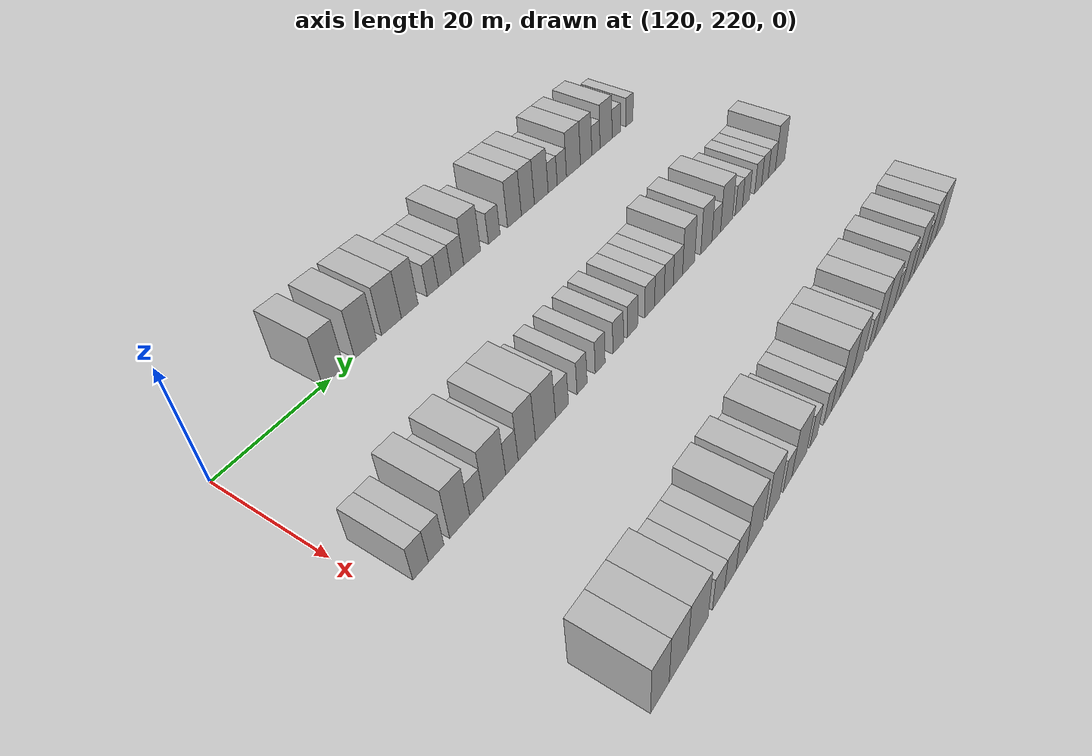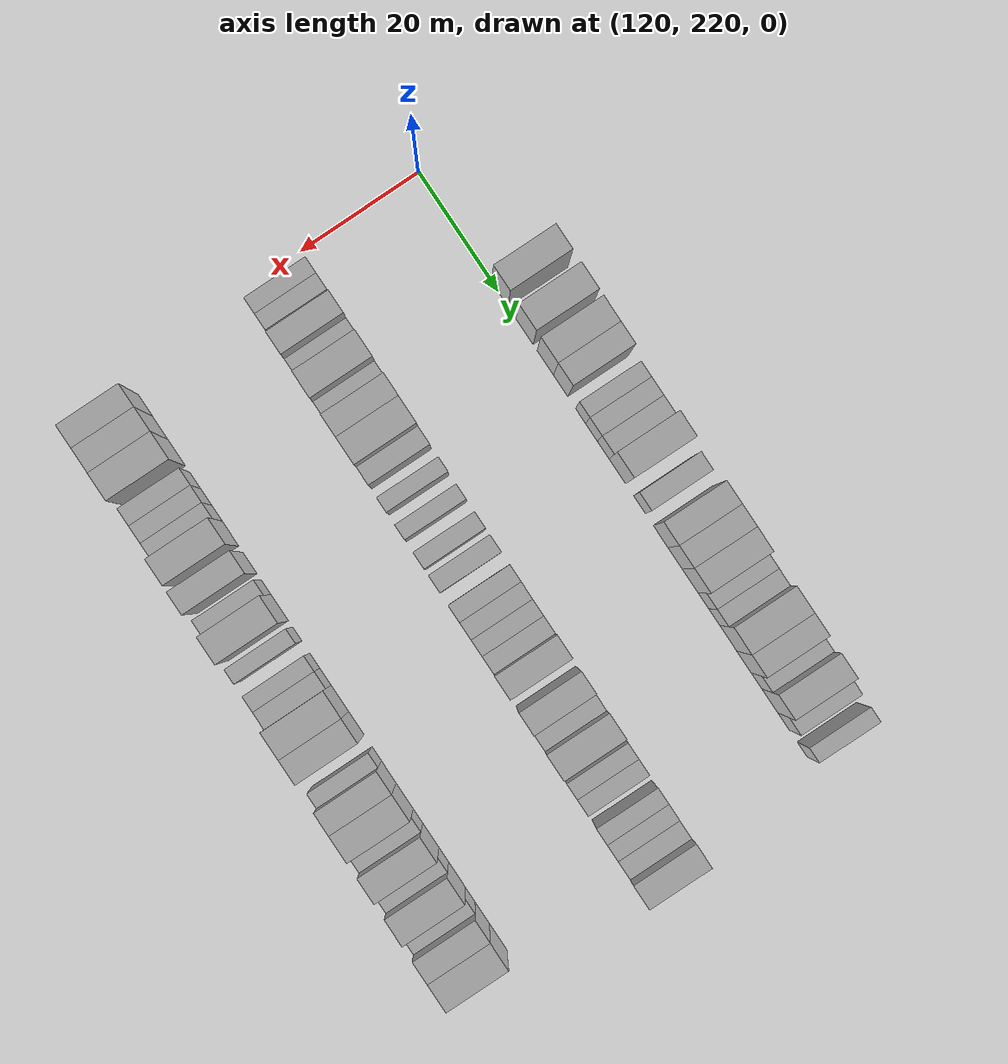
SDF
<sdf version="1.6">
 <world name="default">
  <model name="building_854">
   <static>1</static>
   <pose>115.0000 240.5584 0 0.000000 0.000000 0.000000</pose>
   <link name="link">
    <pose>0 0 4.50 0 0 0</pose>
    <collision name="collision"><geometry><box><size>10.0000 4.0631 9.0000</size></box></geometry></collision>
    <visual name="visual">
     <cast_shadows>0</cast_shadows>
     <geometry><box><size>10.0000 4.0631 9.0000</size></box></geometry>
     <material>
      <script>
       <uri>model://HANNAS_wall/materials/scripts</uri>
       <uri>model://HANNAS_wall/materials/textures</uri>
       <name>vrc/HANNAS_wall</name>
      </script>
     </material>
    </visual>
   </link>
  </model>
  <model name="building_855">
   <static>1</static>
   <pose>115.0000 246.7543 0 0.000000 0.000000 0.000000</pose>
   <link name="link">
    <pose>0 0 4.50 0 0 0</pose>
    <collision name="collision"><geometry><box><size>10.0000 4.3288 9.0000</size></box></geometry></collision>
    <visual name="visual">
     <cast_shadows>0</cast_shadows>
     <geometry><box><size>10.0000 4.3288 9.0000</size></box></geometry>
     <material>
      <script>
       <uri>model://HANNAS_wall/materials/scripts</uri>
       <uri>model://HANNAS_wall/materials/textures</uri>
       <name>vrc/HANNAS_wall</name>
      </script>
     </material>
    </visual>
   </link>
  </model>
  <model name="building_856">
   <static>1</static>
   <pose>115.0000 251.9937 0 0.000000 0.000000 0.000000</pose>
   <link name="link">
    <pose>0 0 4.50 0 0 0</pose>
    <collision name="collision"><geometry><box><size>10.0000 4.1499 9.0000</size></box></geometry></collision>
    <visual name="visual">
     <cast_shadows>0</cast_shadows>
     <geometry><box><size>10.0000 4.1499 9.0000</size></box></geometry>
     <material>
      <script>
       <uri>model://HANNAS_wall/materials/scripts</uri>
       <uri>model://HANNAS_wall/materials/textures</uri>
       <name>vrc/HANNAS_wall</name>
      </script>
     </material>
    </visual>
   </link>
  </model>
  <model name="building_857">
   <static>1</static>
   <pose>115.0000 255.8738 0 0.000000 0.000000 0.000000</pose>
   <link name="link">
    <pose>0 0 4.50 0 0 0</pose>
    <collision name="collision"><geometry><box><size>10.0000 3.6103 9.0000</size></box></geometry></collision>
    <visual name="visual">
     <cast_shadows>0</cast_shadows>
     <geometry><box><size>10.0000 3.6103 9.0000</size></box></geometry>
     <material>
      <script>
       <uri>model://HANNAS_wall/materials/scripts</uri>
       <uri>model://HANNAS_wall/materials/textures</uri>
       <name>vrc/HANNAS_wall</name>
      </script>
     </material>
    </visual>
   </link>
  </model>
  <model name="building_858">
   <static>1</static>
   <pose>115.0000 260.9586 0 0.000000 0.000000 0.000000</pose>
   <link name="link">
    <pose>0 0 3.00 0 0 0</pose>
    <collision name="collision"><geometry><box><size>10.0000 2.5593 6.0000</size></box></geometry></collision>
    <visual name="visual">
     <cast_shadows>0</cast_shadows>
     <geometry><box><size>10.0000 2.5593 6.0000</size></box></geometry>
     <material>
      <script>
       <uri>model://HANNAS_wall/materials/scripts</uri>
       <uri>model://HANNAS_wall/materials/textures</uri>
       <name>vrc/HANNAS_wall</name>
      </script>
     </material>
    </visual>
   </link>
  </model>
  <model name="building_859">
   <static>1</static>
   <pose>115.0000 263.7291 0 0.000000 0.000000 0.000000</pose>
   <link name="link">
    <pose>0 0 3.00 0 0 0</pose>
    <collision name="collision"><geometry><box><size>10.0000 2.9817 6.0000</size></box></geometry></collision>
    <visual name="visual">
     <cast_shadows>0</cast_shadows>
     <geometry><box><size>10.0000 2.9817 6.0000</size></box></geometry>
     <material>
      <script>
       <uri>model://HANNAS_wall/materials/scripts</uri>
       <uri>model://HANNAS_wall/materials/textures</uri>
       <name>vrc/HANNAS_wall</name>
      </script>
     </material>
    </visual>
   </link>
  </model>
  <model name="building_860">
   <static>1</static>
   <pose>115.0000 266.7163 0 0.000000 0.000000 0.000000</pose>
   <link name="link">
    <pose>0 0 3.00 0 0 0</pose>
    <collision name="collision"><geometry><box><size>10.0000 2.9927 6.0000</size></box></geometry></collision>
    <visual name="visual">
     <cast_shadows>0</cast_shadows>
     <geometry><box><size>10.0000 2.9927 6.0000</size></box></geometry>
     <material>
      <script>
       <uri>model://HANNAS_wall/materials/scripts</uri>
       <uri>model://HANNAS_wall/materials/textures</uri>
       <name>vrc/HANNAS_wall</name>
      </script>
     </material>
    </visual>
   </link>
  </model>
  <model name="building_861">
   <static>1</static>
   <pose>115.0000 270.2825 0 0.000000 0.000000 0.000000</pose>
   <link name="link">
    <pose>0 0 4.50 0 0 0</pose>
    <collision name="collision"><geometry><box><size>10.0000 4.1398 9.0000</size></box></geometry></collision>
    <visual name="visual">
     <cast_shadows>0</cast_shadows>
     <geometry><box><size>10.0000 4.1398 9.0000</size></box></geometry>
     <material>
      <script>
       <uri>model://HANNAS_wall/materials/scripts</uri>
       <uri>model://HANNAS_wall/materials/textures</uri>
       <name>vrc/HANNAS_wall</name>
      </script>
     </material>
    </visual>
   </link>
  </model>
  <model name="building_862">
   <static>1</static>
   <pose>115.0000 275.8511 0 0.000000 0.000000 0.000000</pose>
   <link name="link">
    <pose>0 0 3.00 0 0 0</pose>
    <collision name="collision"><geometry><box><size>10.0000 2.9973 6.0000</size></box></geometry></collision>
    <visual name="visual">
     <cast_shadows>0</cast_shadows>
     <geometry><box><size>10.0000 2.9973 6.0000</size></box></geometry>
     <material>
      <script>
       <uri>model://HANNAS_wall/materials/scripts</uri>
       <uri>model://HANNAS_wall/materials/textures</uri>
       <name>vrc/HANNAS_wall</name>
      </script>
     </material>
    </visual>
   </link>
  </model>
  <model name="building_863">
   <static>1</static>
   <pose>115.0000 281.2233 0 0.000000 0.000000 0.000000</pose>
   <link name="link">
    <pose>0 0 4.50 0 0 0</pose>
    <collision name="collision"><geometry><box><size>10.0000 3.7471 9.0000</size></box></geometry></collision>
    <visual name="visual">
     <cast_shadows>0</cast_shadows>
     <geometry><box><size>10.0000 3.7471 9.0000</size></box></geometry>
     <material>
      <script>
       <uri>model://HANNAS_wall/materials/scripts</uri>
       <uri>model://HANNAS_wall/materials/textures</uri>
       <name>vrc/HANNAS_wall</name>
      </script>
     </material>
    </visual>
   </link>
  </model>
  <model name="building_864">
   <static>1</static>
   <pose>115.0000 284.9020 0 0.000000 0.000000 0.000000</pose>
   <link name="link">
    <pose>0 0 4.50 0 0 0</pose>
    <collision name="collision"><geometry><box><size>10.0000 3.6104 9.0000</size></box></geometry></collision>
    <visual name="visual">
     <cast_shadows>0</cast_shadows>
     <geometry><box><size>10.0000 3.6104 9.0000</size></box></geometry>
     <material>
      <script>
       <uri>model://HANNAS_wall/materials/scripts</uri>
       <uri>model://HANNAS_wall/materials/textures</uri>
       <name>vrc/HANNAS_wall</name>
      </script>
     </material>
    </visual>
   </link>
  </model>
  <model name="building_865">
   <static>1</static>
   <pose>115.0000 288.6993 0 0.000000 0.000000 0.000000</pose>
   <link name="link">
    <pose>0 0 4.50 0 0 0</pose>
    <collision name="collision"><geometry><box><size>10.0000 3.9842 9.0000</size></box></geometry></collision>
    <visual name="visual">
     <cast_shadows>0</cast_shadows>
     <geometry><box><size>10.0000 3.9842 9.0000</size></box></geometry>
     <material>
      <script>
       <uri>model://HANNAS_wall/materials/scripts</uri>
       <uri>model://HANNAS_wall/materials/textures</uri>
       <name>vrc/HANNAS_wall</name>
      </script>
     </material>
    </visual>
   </link>
  </model>
  <model name="building_866">
   <static>1</static>
   <pose>115.0000 292.0157 0 0.000000 0.000000 0.000000</pose>
   <link name="link">
    <pose>0 0 3.00 0 0 0</pose>
    <collision name="collision"><geometry><box><size>10.0000 2.6485 6.0000</size></box></geometry></collision>
    <visual name="visual">
     <cast_shadows>0</cast_shadows>
     <geometry><box><size>10.0000 2.6485 6.0000</size></box></geometry>
     <material>
      <script>
       <uri>model://HANNAS_wall/materials/scripts</uri>
       <uri>model://HANNAS_wall/materials/textures</uri>
       <name>vrc/HANNAS_wall</name>
      </script>
     </material>
    </visual>
   </link>
  </model>
  <model name="building_867">
   <static>1</static>
   <pose>115.0000 294.7421 0 0.000000 0.000000 0.000000</pose>
   <link name="link">
    <pose>0 0 3.00 0 0 0</pose>
    <collision name="collision"><geometry><box><size>10.0000 2.8044 6.0000</size></box></geometry></collision>
    <visual name="visual">
     <cast_shadows>0</cast_shadows>
     <geometry><box><size>10.0000 2.8044 6.0000</size></box></geometry>
     <material>
      <script>
       <uri>model://HANNAS_wall/materials/scripts</uri>
       <uri>model://HANNAS_wall/materials/textures</uri>
       <name>vrc/HANNAS_wall</name>
      </script>
     </material>
    </visual>
   </link>
  </model>
  <model name="building_868">
   <static>1</static>
   <pose>115.0000 298.3151 0 0.000000 0.000000 0.000000</pose>
   <link name="link">
    <pose>0 0 4.50 0 0 0</pose>
    <collision name="collision"><geometry><box><size>10.0000 4.3416 9.0000</size></box></geometry></collision>
    <visual name="visual">
     <cast_shadows>0</cast_shadows>
     <geometry><box><size>10.0000 4.3416 9.0000</size></box></geometry>
     <material>
      <script>
       <uri>model://HANNAS_wall/materials/scripts</uri>
       <uri>model://HANNAS_wall/materials/textures</uri>
       <name>vrc/HANNAS_wall</name>
      </script>
     </material>
    </visual>
   </link>
  </model>
  <model name="building_869">
   <static>1</static>
   <pose>115.0000 302.3101 0 0.000000 0.000000 0.000000</pose>
   <link name="link">
    <pose>0 0 4.50 0 0 0</pose>
    <collision name="collision"><geometry><box><size>10.0000 3.6484 9.0000</size></box></geometry></collision>
    <visual name="visual">
     <cast_shadows>0</cast_shadows>
     <geometry><box><size>10.0000 3.6484 9.0000</size></box></geometry>
     <material>
      <script>
       <uri>model://HANNAS_wall/materials/scripts</uri>
       <uri>model://HANNAS_wall/materials/textures</uri>
       <name>vrc/HANNAS_wall</name>
      </script>
     </material>
    </visual>
   </link>
  </model>
  <model name="building_870">
   <static>1</static>
   <pose>115.0000 305.4803 0 0.000000 0.000000 0.000000</pose>
   <link name="link">
    <pose>0 0 3.00 0 0 0</pose>
    <collision name="collision"><geometry><box><size>10.0000 2.6921 6.0000</size></box></geometry></collision>
    <visual name="visual">
     <cast_shadows>0</cast_shadows>
     <geometry><box><size>10.0000 2.6921 6.0000</size></box></geometry>
     <material>
      <script>
       <uri>model://HANNAS_wall/materials/scripts</uri>
       <uri>model://HANNAS_wall/materials/textures</uri>
       <name>vrc/HANNAS_wall</name>
      </script>
     </material>
    </visual>
   </link>
  </model>
  <model name="building_871">
   <static>1</static>
   <pose>115.0000 308.8566 0 0.000000 0.000000 0.000000</pose>
   <link name="link">
    <pose>0 0 4.50 0 0 0</pose>
    <collision name="collision"><geometry><box><size>10.0000 4.0604 9.0000</size></box></geometry></collision>
    <visual name="visual">
     <cast_shadows>0</cast_shadows>
     <geometry><box><size>10.0000 4.0604 9.0000</size></box></geometry>
     <material>
      <script>
       <uri>model://HANNAS_wall/materials/scripts</uri>
       <uri>model://HANNAS_wall/materials/textures</uri>
       <name>vrc/HANNAS_wall</name>
      </script>
     </material>
    </visual>
   </link>
  </model>
  <model name="building_872">
   <static>1</static>
   <pose>115.0000 312.3381 0 0.000000 0.000000 0.000000</pose>
   <link name="link">
    <pose>0 0 3.00 0 0 0</pose>
    <collision name="collision"><geometry><box><size>10.0000 2.9026 6.0000</size></box></geometry></collision>
    <visual name="visual">
     <cast_shadows>0</cast_shadows>
     <geometry><box><size>10.0000 2.9026 6.0000</size></box></geometry>
     <material>
      <script>
       <uri>model://HANNAS_wall/materials/scripts</uri>
       <uri>model://HANNAS_wall/materials/textures</uri>
       <name>vrc/HANNAS_wall</name>
      </script>
     </material>
    </visual>
   </link>
  </model>
  <model name="building_873">
   <static>1</static>
   <pose>115.0000 317.0129 0 0.000000 0.000000 0.000000</pose>
   <link name="link">
    <pose>0 0 3.00 0 0 0</pose>
    <collision name="collision"><geometry><box><size>10.0000 2.4471 6.0000</size></box></geometry></collision>
    <visual name="visual">
     <cast_shadows>0</cast_shadows>
     <geometry><box><size>10.0000 2.4471 6.0000</size></box></geometry>
     <material>
      <script>
       <uri>model://HANNAS_wall/materials/scripts</uri>
       <uri>model://HANNAS_wall/materials/textures</uri>
       <name>vrc/HANNAS_wall</name>
      </script>
     </material>
    </visual>
   </link>
  </model>
  <model name="building_1090">
   <static>1</static>
   <pose>145.0000 224.1685 0 0.000000 0.000000 0.000000</pose>
   <link name="link">
    <pose>0 0 3.00 0 0 0</pose>
    <collision name="collision"><geometry><box><size>10.0000 2.6198 6.0000</size></box></geometry></collision>
    <visual name="visual">
     <cast_shadows>0</cast_shadows>
     <geometry><box><size>10.0000 2.6198 6.0000</size></box></geometry>
     <material>
      <script>
       <uri>model://HANNAS_wall/materials/scripts</uri>
       <uri>model://HANNAS_wall/materials/textures</uri>
       <name>vrc/HANNAS_wall</name>
      </script>
     </material>
    </visual>
   </link>
  </model>
  <model name="building_1091">
   <static>1</static>
   <pose>145.0000 226.8143 0 0.000000 0.000000 0.000000</pose>
   <link name="link">
    <pose>0 0 3.00 0 0 0</pose>
    <collision name="collision"><geometry><box><size>10.0000 2.6717 6.0000</size></box></geometry></collision>
    <visual name="visual">
     <cast_shadows>0</cast_shadows>
     <geometry><box><size>10.0000 2.6717 6.0000</size></box></geometry>
     <material>
      <script>
       <uri>model://HANNAS_wall/materials/scripts</uri>
       <uri>model://HANNAS_wall/materials/textures</uri>
       <name>vrc/HANNAS_wall</name>
      </script>
     </material>
    </visual>
   </link>
  </model>
  <model name="building_1092">
   <static>1</static>
   <pose>145.0000 230.9680 0 0.000000 0.000000 0.000000</pose>
   <link name="link">
    <pose>0 0 4.50 0 0 0</pose>
    <collision name="collision"><geometry><box><size>10.0000 3.6357 9.0000</size></box></geometry></collision>
    <visual name="visual">
     <cast_shadows>0</cast_shadows>
     <geometry><box><size>10.0000 3.6357 9.0000</size></box></geometry>
     <material>
      <script>
       <uri>model://HANNAS_wall/materials/scripts</uri>
       <uri>model://HANNAS_wall/materials/textures</uri>
       <name>vrc/HANNAS_wall</name>
      </script>
     </material>
    </visual>
   </link>
  </model>
  <model name="building_1093">
   <static>1</static>
   <pose>145.0000 234.0963 0 0.000000 0.000000 0.000000</pose>
   <link name="link">
    <pose>0 0 3.00 0 0 0</pose>
    <collision name="collision"><geometry><box><size>10.0000 2.6210 6.0000</size></box></geometry></collision>
    <visual name="visual">
     <cast_shadows>0</cast_shadows>
     <geometry><box><size>10.0000 2.6210 6.0000</size></box></geometry>
     <material>
      <script>
       <uri>model://HANNAS_wall/materials/scripts</uri>
       <uri>model://HANNAS_wall/materials/textures</uri>
       <name>vrc/HANNAS_wall</name>
      </script>
     </material>
    </visual>
   </link>
  </model>
  <model name="building_1094">
   <static>1</static>
   <pose>145.0000 237.5690 0 0.000000 0.000000 0.000000</pose>
   <link name="link">
    <pose>0 0 4.50 0 0 0</pose>
    <collision name="collision"><geometry><box><size>10.0000 4.3244 9.0000</size></box></geometry></collision>
    <visual name="visual">
     <cast_shadows>0</cast_shadows>
     <geometry><box><size>10.0000 4.3244 9.0000</size></box></geometry>
     <material>
      <script>
       <uri>model://HANNAS_wall/materials/scripts</uri>
       <uri>model://HANNAS_wall/materials/textures</uri>
       <name>vrc/HANNAS_wall</name>
      </script>
     </material>
    </visual>
   </link>
  </model>
  <model name="building_1095">
   <static>1</static>
   <pose>145.0000 241.0086 0 0.000000 0.000000 0.000000</pose>
   <link name="link">
    <pose>0 0 3.00 0 0 0</pose>
    <collision name="collision"><geometry><box><size>10.0000 2.5547 6.0000</size></box></geometry></collision>
    <visual name="visual">
     <cast_shadows>0</cast_shadows>
     <geometry><box><size>10.0000 2.5547 6.0000</size></box></geometry>
     <material>
      <script>
       <uri>model://HANNAS_wall/materials/scripts</uri>
       <uri>model://HANNAS_wall/materials/textures</uri>
       <name>vrc/HANNAS_wall</name>
      </script>
     </material>
    </visual>
   </link>
  </model>
  <model name="building_1096">
   <static>1</static>
   <pose>145.0000 244.1035 0 0.000000 0.000000 0.000000</pose>
   <link name="link">
    <pose>0 0 4.50 0 0 0</pose>
    <collision name="collision"><geometry><box><size>10.0000 3.6352 9.0000</size></box></geometry></collision>
    <visual name="visual">
     <cast_shadows>0</cast_shadows>
     <geometry><box><size>10.0000 3.6352 9.0000</size></box></geometry>
     <material>
      <script>
       <uri>model://HANNAS_wall/materials/scripts</uri>
       <uri>model://HANNAS_wall/materials/textures</uri>
       <name>vrc/HANNAS_wall</name>
      </script>
     </material>
    </visual>
   </link>
  </model>
  <model name="building_1097">
   <static>1</static>
   <pose>145.0000 248.1163 0 0.000000 0.000000 0.000000</pose>
   <link name="link">
    <pose>0 0 4.50 0 0 0</pose>
    <collision name="collision"><geometry><box><size>10.0000 4.3904 9.0000</size></box></geometry></collision>
    <visual name="visual">
     <cast_shadows>0</cast_shadows>
     <geometry><box><size>10.0000 4.3904 9.0000</size></box></geometry>
     <material>
      <script>
       <uri>model://HANNAS_wall/materials/scripts</uri>
       <uri>model://HANNAS_wall/materials/textures</uri>
       <name>vrc/HANNAS_wall</name>
      </script>
     </material>
    </visual>
   </link>
  </model>
  <model name="building_1098">
   <static>1</static>
   <pose>145.0000 251.7940 0 0.000000 0.000000 0.000000</pose>
   <link name="link">
    <pose>0 0 3.00 0 0 0</pose>
    <collision name="collision"><geometry><box><size>10.0000 2.9651 6.0000</size></box></geometry></collision>
    <visual name="visual">
     <cast_shadows>0</cast_shadows>
     <geometry><box><size>10.0000 2.9651 6.0000</size></box></geometry>
     <material>
      <script>
       <uri>model://HANNAS_wall/materials/scripts</uri>
       <uri>model://HANNAS_wall/materials/textures</uri>
       <name>vrc/HANNAS_wall</name>
      </script>
     </material>
    </visual>
   </link>
  </model>
  <model name="building_1099">
   <static>1</static>
   <pose>145.0000 256.4855 0 0.000000 0.000000 0.000000</pose>
   <link name="link">
    <pose>0 0 3.00 0 0 0</pose>
    <collision name="collision"><geometry><box><size>10.0000 2.4179 6.0000</size></box></geometry></collision>
    <visual name="visual">
     <cast_shadows>0</cast_shadows>
     <geometry><box><size>10.0000 2.4179 6.0000</size></box></geometry>
     <material>
      <script>
       <uri>model://HANNAS_wall/materials/scripts</uri>
       <uri>model://HANNAS_wall/materials/textures</uri>
       <name>vrc/HANNAS_wall</name>
      </script>
     </material>
    </visual>
   </link>
  </model>
  <model name="building_1100">
   <static>1</static>
   <pose>145.0000 260.9284 0 0.000000 0.000000 0.000000</pose>
   <link name="link">
    <pose>0 0 3.00 0 0 0</pose>
    <collision name="collision"><geometry><box><size>10.0000 2.4680 6.0000</size></box></geometry></collision>
    <visual name="visual">
     <cast_shadows>0</cast_shadows>
     <geometry><box><size>10.0000 2.4680 6.0000</size></box></geometry>
     <material>
      <script>
       <uri>model://HANNAS_wall/materials/scripts</uri>
       <uri>model://HANNAS_wall/materials/textures</uri>
       <name>vrc/HANNAS_wall</name>
      </script>
     </material>
    </visual>
   </link>
  </model>
  <model name="building_1101">
   <static>1</static>
   <pose>145.0000 265.5333 0 0.000000 0.000000 0.000000</pose>
   <link name="link">
    <pose>0 0 3.00 0 0 0</pose>
    <collision name="collision"><geometry><box><size>10.0000 2.7417 6.0000</size></box></geometry></collision>
    <visual name="visual">
     <cast_shadows>0</cast_shadows>
     <geometry><box><size>10.0000 2.7417 6.0000</size></box></geometry>
     <material>
      <script>
       <uri>model://HANNAS_wall/materials/scripts</uri>
       <uri>model://HANNAS_wall/materials/textures</uri>
       <name>vrc/HANNAS_wall</name>
      </script>
     </material>
    </visual>
   </link>
  </model>
  <model name="building_1102">
   <static>1</static>
   <pose>145.0000 269.3330 0 0.000000 0.000000 0.000000</pose>
   <link name="link">
    <pose>0 0 3.00 0 0 0</pose>
    <collision name="collision"><geometry><box><size>10.0000 2.8578 6.0000</size></box></geometry></collision>
    <visual name="visual">
     <cast_shadows>0</cast_shadows>
     <geometry><box><size>10.0000 2.8578 6.0000</size></box></geometry>
     <material>
      <script>
       <uri>model://HANNAS_wall/materials/scripts</uri>
       <uri>model://HANNAS_wall/materials/textures</uri>
       <name>vrc/HANNAS_wall</name>
      </script>
     </material>
    </visual>
   </link>
  </model>
  <model name="building_1103">
   <static>1</static>
   <pose>145.0000 274.1606 0 0.000000 0.000000 0.000000</pose>
   <link name="link">
    <pose>0 0 3.00 0 0 0</pose>
    <collision name="collision"><geometry><box><size>10.0000 2.7974 6.0000</size></box></geometry></collision>
    <visual name="visual">
     <cast_shadows>0</cast_shadows>
     <geometry><box><size>10.0000 2.7974 6.0000</size></box></geometry>
     <material>
      <script>
       <uri>model://HANNAS_wall/materials/scripts</uri>
       <uri>model://HANNAS_wall/materials/textures</uri>
       <name>vrc/HANNAS_wall</name>
      </script>
     </material>
    </visual>
   </link>
  </model>
  <model name="building_1104">
   <static>1</static>
   <pose>145.0000 276.9651 0 0.000000 0.000000 0.000000</pose>
   <link name="link">
    <pose>0 0 3.00 0 0 0</pose>
    <collision name="collision"><geometry><box><size>10.0000 2.8115 6.0000</size></box></geometry></collision>
    <visual name="visual">
     <cast_shadows>0</cast_shadows>
     <geometry><box><size>10.0000 2.8115 6.0000</size></box></geometry>
     <material>
      <script>
       <uri>model://HANNAS_wall/materials/scripts</uri>
       <uri>model://HANNAS_wall/materials/textures</uri>
       <name>vrc/HANNAS_wall</name>
      </script>
     </material>
    </visual>
   </link>
  </model>
  <model name="building_1105">
   <static>1</static>
   <pose>145.0000 279.7249 0 0.000000 0.000000 0.000000</pose>
   <link name="link">
    <pose>0 0 3.00 0 0 0</pose>
    <collision name="collision"><geometry><box><size>10.0000 2.7082 6.0000</size></box></geometry></collision>
    <visual name="visual">
     <cast_shadows>0</cast_shadows>
     <geometry><box><size>10.0000 2.7082 6.0000</size></box></geometry>
     <material>
      <script>
       <uri>model://HANNAS_wall/materials/scripts</uri>
       <uri>model://HANNAS_wall/materials/textures</uri>
       <name>vrc/HANNAS_wall</name>
      </script>
     </material>
    </visual>
   </link>
  </model>
  <model name="building_1106">
   <static>1</static>
   <pose>145.0000 282.5231 0 0.000000 0.000000 0.000000</pose>
   <link name="link">
    <pose>0 0 3.00 0 0 0</pose>
    <collision name="collision"><geometry><box><size>10.0000 2.8881 6.0000</size></box></geometry></collision>
    <visual name="visual">
     <cast_shadows>0</cast_shadows>
     <geometry><box><size>10.0000 2.8881 6.0000</size></box></geometry>
     <material>
      <script>
       <uri>model://HANNAS_wall/materials/scripts</uri>
       <uri>model://HANNAS_wall/materials/textures</uri>
       <name>vrc/HANNAS_wall</name>
      </script>
     </material>
    </visual>
   </link>
  </model>
  <model name="building_1107">
   <static>1</static>
   <pose>145.0000 285.8740 0 0.000000 0.000000 0.000000</pose>
   <link name="link">
    <pose>0 0 4.50 0 0 0</pose>
    <collision name="collision"><geometry><box><size>10.0000 3.8138 9.0000</size></box></geometry></collision>
    <visual name="visual">
     <cast_shadows>0</cast_shadows>
     <geometry><box><size>10.0000 3.8138 9.0000</size></box></geometry>
     <material>
      <script>
       <uri>model://HANNAS_wall/materials/scripts</uri>
       <uri>model://HANNAS_wall/materials/textures</uri>
       <name>vrc/HANNAS_wall</name>
      </script>
     </material>
    </visual>
   </link>
  </model>
  <model name="building_1108">
   <static>1</static>
   <pose>145.0000 291.6220 0 0.000000 0.000000 0.000000</pose>
   <link name="link">
    <pose>0 0 4.50 0 0 0</pose>
    <collision name="collision"><geometry><box><size>10.0000 3.6821 9.0000</size></box></geometry></collision>
    <visual name="visual">
     <cast_shadows>0</cast_shadows>
     <geometry><box><size>10.0000 3.6821 9.0000</size></box></geometry>
     <material>
      <script>
       <uri>model://HANNAS_wall/materials/scripts</uri>
       <uri>model://HANNAS_wall/materials/textures</uri>
       <name>vrc/HANNAS_wall</name>
      </script>
     </material>
    </visual>
   </link>
  </model>
  <model name="building_1109">
   <static>1</static>
   <pose>145.0000 294.9605 0 0.000000 0.000000 0.000000</pose>
   <link name="link">
    <pose>0 0 3.00 0 0 0</pose>
    <collision name="collision"><geometry><box><size>10.0000 2.9949 6.0000</size></box></geometry></collision>
    <visual name="visual">
     <cast_shadows>0</cast_shadows>
     <geometry><box><size>10.0000 2.9949 6.0000</size></box></geometry>
     <material>
      <script>
       <uri>model://HANNAS_wall/materials/scripts</uri>
       <uri>model://HANNAS_wall/materials/textures</uri>
       <name>vrc/HANNAS_wall</name>
      </script>
     </material>
    </visual>
   </link>
  </model>
  <model name="building_1110">
   <static>1</static>
   <pose>145.0000 298.5709 0 0.000000 0.000000 0.000000</pose>
   <link name="link">
    <pose>0 0 4.50 0 0 0</pose>
    <collision name="collision"><geometry><box><size>10.0000 4.2260 9.0000</size></box></geometry></collision>
    <visual name="visual">
     <cast_shadows>0</cast_shadows>
     <geometry><box><size>10.0000 4.2260 9.0000</size></box></geometry>
     <material>
      <script>
       <uri>model://HANNAS_wall/materials/scripts</uri>
       <uri>model://HANNAS_wall/materials/textures</uri>
       <name>vrc/HANNAS_wall</name>
      </script>
     </material>
    </visual>
   </link>
  </model>
  <model name="building_1111">
   <static>1</static>
   <pose>145.0000 302.9987 0 0.000000 0.000000 0.000000</pose>
   <link name="link">
    <pose>0 0 3.00 0 0 0</pose>
    <collision name="collision"><geometry><box><size>10.0000 2.6296 6.0000</size></box></geometry></collision>
    <visual name="visual">
     <cast_shadows>0</cast_shadows>
     <geometry><box><size>10.0000 2.6296 6.0000</size></box></geometry>
     <material>
      <script>
       <uri>model://HANNAS_wall/materials/scripts</uri>
       <uri>model://HANNAS_wall/materials/textures</uri>
       <name>vrc/HANNAS_wall</name>
      </script>
     </material>
    </visual>
   </link>
  </model>
  <model name="building_1112">
   <static>1</static>
   <pose>145.0000 305.6463 0 0.000000 0.000000 0.000000</pose>
   <link name="link">
    <pose>0 0 3.00 0 0 0</pose>
    <collision name="collision"><geometry><box><size>10.0000 2.6657 6.0000</size></box></geometry></collision>
    <visual name="visual">
     <cast_shadows>0</cast_shadows>
     <geometry><box><size>10.0000 2.6657 6.0000</size></box></geometry>
     <material>
      <script>
       <uri>model://HANNAS_wall/materials/scripts</uri>
       <uri>model://HANNAS_wall/materials/textures</uri>
       <name>vrc/HANNAS_wall</name>
      </script>
     </material>
    </visual>
   </link>
  </model>
  <model name="building_1113">
   <static>1</static>
   <pose>145.0000 310.3112 0 0.000000 0.000000 0.000000</pose>
   <link name="link">
    <pose>0 0 3.00 0 0 0</pose>
    <collision name="collision"><geometry><box><size>10.0000 2.6642 6.0000</size></box></geometry></collision>
    <visual name="visual">
     <cast_shadows>0</cast_shadows>
     <geometry><box><size>10.0000 2.6642 6.0000</size></box></geometry>
     <material>
      <script>
       <uri>model://HANNAS_wall/materials/scripts</uri>
       <uri>model://HANNAS_wall/materials/textures</uri>
       <name>vrc/HANNAS_wall</name>
      </script>
     </material>
    </visual>
   </link>
  </model>
  <model name="building_1114">
   <static>1</static>
   <pose>145.0000 312.9701 0 0.000000 0.000000 0.000000</pose>
   <link name="link">
    <pose>0 0 3.00 0 0 0</pose>
    <collision name="collision"><geometry><box><size>10.0000 2.6536 6.0000</size></box></geometry></collision>
    <visual name="visual">
     <cast_shadows>0</cast_shadows>
     <geometry><box><size>10.0000 2.6536 6.0000</size></box></geometry>
     <material>
      <script>
       <uri>model://HANNAS_wall/materials/scripts</uri>
       <uri>model://HANNAS_wall/materials/textures</uri>
       <name>vrc/HANNAS_wall</name>
      </script>
     </material>
    </visual>
   </link>
  </model>
  <model name="building_1115">
   <static>1</static>
   <pose>145.0000 315.7651 0 0.000000 0.000000 0.000000</pose>
   <link name="link">
    <pose>0 0 3.00 0 0 0</pose>
    <collision name="collision"><geometry><box><size>10.0000 2.9365 6.0000</size></box></geometry></collision>
    <visual name="visual">
     <cast_shadows>0</cast_shadows>
     <geometry><box><size>10.0000 2.9365 6.0000</size></box></geometry>
     <material>
      <script>
       <uri>model://HANNAS_wall/materials/scripts</uri>
       <uri>model://HANNAS_wall/materials/textures</uri>
       <name>vrc/HANNAS_wall</name>
      </script>
     </material>
    </visual>
   </link>
  </model>
  <model name="building_1116">
   <static>1</static>
   <pose>145.0000 319.1755 0 0.000000 0.000000 0.000000</pose>
   <link name="link">
    <pose>0 0 4.50 0 0 0</pose>
    <collision name="collision"><geometry><box><size>10.0000 3.8842 9.0000</size></box></geometry></collision>
    <visual name="visual">
     <cast_shadows>0</cast_shadows>
     <geometry><box><size>10.0000 3.8842 9.0000</size></box></geometry>
     <material>
      <script>
       <uri>model://HANNAS_wall/materials/scripts</uri>
       <uri>model://HANNAS_wall/materials/textures</uri>
       <name>vrc/HANNAS_wall</name>
      </script>
     </material>
    </visual>
   </link>
  </model>
  <model name="building_1316">
   <static>1</static>
   <pose>175.0000 225.9392 0 0.000000 0.000000 0.000000</pose>
   <link name="link">
    <pose>0 0 4.50 0 0 0</pose>
    <collision name="collision"><geometry><box><size>10.0000 3.6906 9.0000</size></box></geometry></collision>
    <visual name="visual">
     <cast_shadows>0</cast_shadows>
     <geometry><box><size>10.0000 3.6906 9.0000</size></box></geometry>
     <material>
      <script>
       <uri>model://HANNAS_wall/materials/scripts</uri>
       <uri>model://HANNAS_wall/materials/textures</uri>
       <name>vrc/HANNAS_wall</name>
      </script>
     </material>
    </visual>
   </link>
  </model>
  <model name="building_1317">
   <static>1</static>
   <pose>175.0000 229.7370 0 0.000000 0.000000 0.000000</pose>
   <link name="link">
    <pose>0 0 4.50 0 0 0</pose>
    <collision name="collision"><geometry><box><size>10.0000 3.9050 9.0000</size></box></geometry></collision>
    <visual name="visual">
     <cast_shadows>0</cast_shadows>
     <geometry><box><size>10.0000 3.9050 9.0000</size></box></geometry>
     <material>
      <script>
       <uri>model://HANNAS_wall/materials/scripts</uri>
       <uri>model://HANNAS_wall/materials/textures</uri>
       <name>vrc/HANNAS_wall</name>
      </script>
     </material>
    </visual>
   </link>
  </model>
  <model name="building_1318">
   <static>1</static>
   <pose>175.0000 233.9208 0 0.000000 0.000000 0.000000</pose>
   <link name="link">
    <pose>0 0 4.50 0 0 0</pose>
    <collision name="collision"><geometry><box><size>10.0000 4.4626 9.0000</size></box></geometry></collision>
    <visual name="visual">
     <cast_shadows>0</cast_shadows>
     <geometry><box><size>10.0000 4.4626 9.0000</size></box></geometry>
     <material>
      <script>
       <uri>model://HANNAS_wall/materials/scripts</uri>
       <uri>model://HANNAS_wall/materials/textures</uri>
       <name>vrc/HANNAS_wall</name>
      </script>
     </material>
    </visual>
   </link>
  </model>
  <model name="building_1319">
   <static>1</static>
   <pose>175.0000 238.5549 0 0.000000 0.000000 0.000000</pose>
   <link name="link">
    <pose>0 0 3.00 0 0 0</pose>
    <collision name="collision"><geometry><box><size>10.0000 2.8056 6.0000</size></box></geometry></collision>
    <visual name="visual">
     <cast_shadows>0</cast_shadows>
     <geometry><box><size>10.0000 2.8056 6.0000</size></box></geometry>
     <material>
      <script>
       <uri>model://HANNAS_wall/materials/scripts</uri>
       <uri>model://HANNAS_wall/materials/textures</uri>
       <name>vrc/HANNAS_wall</name>
      </script>
     </material>
    </visual>
   </link>
  </model>
  <model name="building_1320">
   <static>1</static>
   <pose>175.0000 241.3622 0 0.000000 0.000000 0.000000</pose>
   <link name="link">
    <pose>0 0 3.00 0 0 0</pose>
    <collision name="collision"><geometry><box><size>10.0000 2.8089 6.0000</size></box></geometry></collision>
    <visual name="visual">
     <cast_shadows>0</cast_shadows>
     <geometry><box><size>10.0000 2.8089 6.0000</size></box></geometry>
     <material>
      <script>
       <uri>model://HANNAS_wall/materials/scripts</uri>
       <uri>model://HANNAS_wall/materials/textures</uri>
       <name>vrc/HANNAS_wall</name>
      </script>
     </material>
    </visual>
   </link>
  </model>
  <model name="building_1321">
   <static>1</static>
   <pose>175.0000 244.0847 0 0.000000 0.000000 0.000000</pose>
   <link name="link">
    <pose>0 0 3.00 0 0 0</pose>
    <collision name="collision"><geometry><box><size>10.0000 2.6363 6.0000</size></box></geometry></collision>
    <visual name="visual">
     <cast_shadows>0</cast_shadows>
     <geometry><box><size>10.0000 2.6363 6.0000</size></box></geometry>
     <material>
      <script>
       <uri>model://HANNAS_wall/materials/scripts</uri>
       <uri>model://HANNAS_wall/materials/textures</uri>
       <name>vrc/HANNAS_wall</name>
      </script>
     </material>
    </visual>
   </link>
  </model>
  <model name="building_1322">
   <static>1</static>
   <pose>175.0000 247.5231 0 0.000000 0.000000 0.000000</pose>
   <link name="link">
    <pose>0 0 4.50 0 0 0</pose>
    <collision name="collision"><geometry><box><size>10.0000 4.2405 9.0000</size></box></geometry></collision>
    <visual name="visual">
     <cast_shadows>0</cast_shadows>
     <geometry><box><size>10.0000 4.2405 9.0000</size></box></geometry>
     <material>
      <script>
       <uri>model://HANNAS_wall/materials/scripts</uri>
       <uri>model://HANNAS_wall/materials/textures</uri>
       <name>vrc/HANNAS_wall</name>
      </script>
     </material>
    </visual>
   </link>
  </model>
  <model name="building_1323">
   <static>1</static>
   <pose>175.0000 252.4715 0 0.000000 0.000000 0.000000</pose>
   <link name="link">
    <pose>0 0 4.50 0 0 0</pose>
    <collision name="collision"><geometry><box><size>10.0000 3.6562 9.0000</size></box></geometry></collision>
    <visual name="visual">
     <cast_shadows>0</cast_shadows>
     <geometry><box><size>10.0000 3.6562 9.0000</size></box></geometry>
     <material>
      <script>
       <uri>model://HANNAS_wall/materials/scripts</uri>
       <uri>model://HANNAS_wall/materials/textures</uri>
       <name>vrc/HANNAS_wall</name>
      </script>
     </material>
    </visual>
   </link>
  </model>
  <model name="building_1324">
   <static>1</static>
   <pose>175.0000 256.5465 0 0.000000 0.000000 0.000000</pose>
   <link name="link">
    <pose>0 0 3.00 0 0 0</pose>
    <collision name="collision"><geometry><box><size>10.0000 2.4939 6.0000</size></box></geometry></collision>
    <visual name="visual">
     <cast_shadows>0</cast_shadows>
     <geometry><box><size>10.0000 2.4939 6.0000</size></box></geometry>
     <material>
      <script>
       <uri>model://HANNAS_wall/materials/scripts</uri>
       <uri>model://HANNAS_wall/materials/textures</uri>
       <name>vrc/HANNAS_wall</name>
      </script>
     </material>
    </visual>
   </link>
  </model>
  <model name="building_1325">
   <static>1</static>
   <pose>175.0000 260.0124 0 0.000000 0.000000 0.000000</pose>
   <link name="link">
    <pose>0 0 4.50 0 0 0</pose>
    <collision name="collision"><geometry><box><size>10.0000 4.4379 9.0000</size></box></geometry></collision>
    <visual name="visual">
     <cast_shadows>0</cast_shadows>
     <geometry><box><size>10.0000 4.4379 9.0000</size></box></geometry>
     <material>
      <script>
       <uri>model://HANNAS_wall/materials/scripts</uri>
       <uri>model://HANNAS_wall/materials/textures</uri>
       <name>vrc/HANNAS_wall</name>
      </script>
     </material>
    </visual>
   </link>
  </model>
  <model name="building_1326">
   <static>1</static>
   <pose>175.0000 264.4316 0 0.000000 0.000000 0.000000</pose>
   <link name="link">
    <pose>0 0 3.00 0 0 0</pose>
    <collision name="collision"><geometry><box><size>10.0000 2.4004 6.0000</size></box></geometry></collision>
    <visual name="visual">
     <cast_shadows>0</cast_shadows>
     <geometry><box><size>10.0000 2.4004 6.0000</size></box></geometry>
     <material>
      <script>
       <uri>model://HANNAS_wall/materials/scripts</uri>
       <uri>model://HANNAS_wall/materials/textures</uri>
       <name>vrc/HANNAS_wall</name>
      </script>
     </material>
    </visual>
   </link>
  </model>
  <model name="building_1327">
   <static>1</static>
   <pose>175.0000 268.9072 0 0.000000 0.000000 0.000000</pose>
   <link name="link">
    <pose>0 0 3.00 0 0 0</pose>
    <collision name="collision"><geometry><box><size>10.0000 2.5508 6.0000</size></box></geometry></collision>
    <visual name="visual">
     <cast_shadows>0</cast_shadows>
     <geometry><box><size>10.0000 2.5508 6.0000</size></box></geometry>
     <material>
      <script>
       <uri>model://HANNAS_wall/materials/scripts</uri>
       <uri>model://HANNAS_wall/materials/textures</uri>
       <name>vrc/HANNAS_wall</name>
      </script>
     </material>
    </visual>
   </link>
  </model>
  <model name="building_1328">
   <static>1</static>
   <pose>175.0000 271.5911 0 0.000000 0.000000 0.000000</pose>
   <link name="link">
    <pose>0 0 3.00 0 0 0</pose>
    <collision name="collision"><geometry><box><size>10.0000 2.8171 6.0000</size></box></geometry></collision>
    <visual name="visual">
     <cast_shadows>0</cast_shadows>
     <geometry><box><size>10.0000 2.8171 6.0000</size></box></geometry>
     <material>
      <script>
       <uri>model://HANNAS_wall/materials/scripts</uri>
       <uri>model://HANNAS_wall/materials/textures</uri>
       <name>vrc/HANNAS_wall</name>
      </script>
     </material>
    </visual>
   </link>
  </model>
  <model name="building_1329">
   <static>1</static>
   <pose>175.0000 275.2032 0 0.000000 0.000000 0.000000</pose>
   <link name="link">
    <pose>0 0 4.50 0 0 0</pose>
    <collision name="collision"><geometry><box><size>10.0000 4.4070 9.0000</size></box></geometry></collision>
    <visual name="visual">
     <cast_shadows>0</cast_shadows>
     <geometry><box><size>10.0000 4.4070 9.0000</size></box></geometry>
     <material>
      <script>
       <uri>model://HANNAS_wall/materials/scripts</uri>
       <uri>model://HANNAS_wall/materials/textures</uri>
       <name>vrc/HANNAS_wall</name>
      </script>
     </material>
    </visual>
   </link>
  </model>
  <model name="building_1330">
   <static>1</static>
   <pose>175.0000 279.3891 0 0.000000 0.000000 0.000000</pose>
   <link name="link">
    <pose>0 0 4.50 0 0 0</pose>
    <collision name="collision"><geometry><box><size>10.0000 3.9647 9.0000</size></box></geometry></collision>
    <visual name="visual">
     <cast_shadows>0</cast_shadows>
     <geometry><box><size>10.0000 3.9647 9.0000</size></box></geometry>
     <material>
      <script>
       <uri>model://HANNAS_wall/materials/scripts</uri>
       <uri>model://HANNAS_wall/materials/textures</uri>
       <name>vrc/HANNAS_wall</name>
      </script>
     </material>
    </visual>
   </link>
  </model>
  <model name="building_1331">
   <static>1</static>
   <pose>175.0000 284.5792 0 0.000000 0.000000 0.000000</pose>
   <link name="link">
    <pose>0 0 3.00 0 0 0</pose>
    <collision name="collision"><geometry><box><size>10.0000 2.4155 6.0000</size></box></geometry></collision>
    <visual name="visual">
     <cast_shadows>0</cast_shadows>
     <geometry><box><size>10.0000 2.4155 6.0000</size></box></geometry>
     <material>
      <script>
       <uri>model://HANNAS_wall/materials/scripts</uri>
       <uri>model://HANNAS_wall/materials/textures</uri>
       <name>vrc/HANNAS_wall</name>
      </script>
     </material>
    </visual>
   </link>
  </model>
  <model name="building_1332">
   <static>1</static>
   <pose>175.0000 287.6320 0 0.000000 0.000000 0.000000</pose>
   <link name="link">
    <pose>0 0 4.50 0 0 0</pose>
    <collision name="collision"><geometry><box><size>10.0000 3.6902 9.0000</size></box></geometry></collision>
    <visual name="visual">
     <cast_shadows>0</cast_shadows>
     <geometry><box><size>10.0000 3.6902 9.0000</size></box></geometry>
     <material>
      <script>
       <uri>model://HANNAS_wall/materials/scripts</uri>
       <uri>model://HANNAS_wall/materials/textures</uri>
       <name>vrc/HANNAS_wall</name>
      </script>
     </material>
    </visual>
   </link>
  </model>
  <model name="building_1333">
   <static>1</static>
   <pose>175.0000 291.6484 0 0.000000 0.000000 0.000000</pose>
   <link name="link">
    <pose>0 0 4.50 0 0 0</pose>
    <collision name="collision"><geometry><box><size>10.0000 4.3424 9.0000</size></box></geometry></collision>
    <visual name="visual">
     <cast_shadows>0</cast_shadows>
     <geometry><box><size>10.0000 4.3424 9.0000</size></box></geometry>
     <material>
      <script>
       <uri>model://HANNAS_wall/materials/scripts</uri>
       <uri>model://HANNAS_wall/materials/textures</uri>
       <name>vrc/HANNAS_wall</name>
      </script>
     </material>
    </visual>
   </link>
  </model>
  <model name="building_1334">
   <static>1</static>
   <pose>175.0000 295.0215 0 0.000000 0.000000 0.000000</pose>
   <link name="link">
    <pose>0 0 3.00 0 0 0</pose>
    <collision name="collision"><geometry><box><size>10.0000 2.4038 6.0000</size></box></geometry></collision>
    <visual name="visual">
     <cast_shadows>0</cast_shadows>
     <geometry><box><size>10.0000 2.4038 6.0000</size></box></geometry>
     <material>
      <script>
       <uri>model://HANNAS_wall/materials/scripts</uri>
       <uri>model://HANNAS_wall/materials/textures</uri>
       <name>vrc/HANNAS_wall</name>
      </script>
     </material>
    </visual>
   </link>
  </model>
  <model name="building_1335">
   <static>1</static>
   <pose>175.0000 298.2788 0 0.000000 0.000000 0.000000</pose>
   <link name="link">
    <pose>0 0 4.50 0 0 0</pose>
    <collision name="collision"><geometry><box><size>10.0000 4.1110 9.0000</size></box></geometry></collision>
    <visual name="visual">
     <cast_shadows>0</cast_shadows>
     <geometry><box><size>10.0000 4.1110 9.0000</size></box></geometry>
     <material>
      <script>
       <uri>model://HANNAS_wall/materials/scripts</uri>
       <uri>model://HANNAS_wall/materials/textures</uri>
       <name>vrc/HANNAS_wall</name>
      </script>
     </material>
    </visual>
   </link>
  </model>
  <model name="building_1336">
   <static>1</static>
   <pose>175.0000 301.5409 0 0.000000 0.000000 0.000000</pose>
   <link name="link">
    <pose>0 0 3.00 0 0 0</pose>
    <collision name="collision"><geometry><box><size>10.0000 2.4131 6.0000</size></box></geometry></collision>
    <visual name="visual">
     <cast_shadows>0</cast_shadows>
     <geometry><box><size>10.0000 2.4131 6.0000</size></box></geometry>
     <material>
      <script>
       <uri>model://HANNAS_wall/materials/scripts</uri>
       <uri>model://HANNAS_wall/materials/textures</uri>
       <name>vrc/HANNAS_wall</name>
      </script>
     </material>
    </visual>
   </link>
  </model>
  <model name="building_1337">
   <static>1</static>
   <pose>175.0000 304.9012 0 0.000000 0.000000 0.000000</pose>
   <link name="link">
    <pose>0 0 4.50 0 0 0</pose>
    <collision name="collision"><geometry><box><size>10.0000 4.3076 9.0000</size></box></geometry></collision>
    <visual name="visual">
     <cast_shadows>0</cast_shadows>
     <geometry><box><size>10.0000 4.3076 9.0000</size></box></geometry>
     <material>
      <script>
       <uri>model://HANNAS_wall/materials/scripts</uri>
       <uri>model://HANNAS_wall/materials/textures</uri>
       <name>vrc/HANNAS_wall</name>
      </script>
     </material>
    </visual>
   </link>
  </model>
  <model name="building_1338">
   <static>1</static>
   <pose>175.0000 308.2557 0 0.000000 0.000000 0.000000</pose>
   <link name="link">
    <pose>0 0 3.00 0 0 0</pose>
    <collision name="collision"><geometry><box><size>10.0000 2.4014 6.0000</size></box></geometry></collision>
    <visual name="visual">
     <cast_shadows>0</cast_shadows>
     <geometry><box><size>10.0000 2.4014 6.0000</size></box></geometry>
     <material>
      <script>
       <uri>model://HANNAS_wall/materials/scripts</uri>
       <uri>model://HANNAS_wall/materials/textures</uri>
       <name>vrc/HANNAS_wall</name>
      </script>
     </material>
    </visual>
   </link>
  </model>
  <model name="building_1339">
   <static>1</static>
   <pose>175.0000 311.2737 0 0.000000 0.000000 0.000000</pose>
   <link name="link">
    <pose>0 0 4.50 0 0 0</pose>
    <collision name="collision"><geometry><box><size>10.0000 3.6345 9.0000</size></box></geometry></collision>
    <visual name="visual">
     <cast_shadows>0</cast_shadows>
     <geometry><box><size>10.0000 3.6345 9.0000</size></box></geometry>
     <material>
      <script>
       <uri>model://HANNAS_wall/materials/scripts</uri>
       <uri>model://HANNAS_wall/materials/textures</uri>
       <name>vrc/HANNAS_wall</name>
      </script>
     </material>
    </visual>
   </link>
  </model>
  <model name="building_1340">
   <static>1</static>
   <pose>175.0000 315.3183 0 0.000000 0.000000 0.000000</pose>
   <link name="link">
    <pose>0 0 4.50 0 0 0</pose>
    <collision name="collision"><geometry><box><size>10.0000 4.4547 9.0000</size></box></geometry></collision>
    <visual name="visual">
     <cast_shadows>0</cast_shadows>
     <geometry><box><size>10.0000 4.4547 9.0000</size></box></geometry>
     <material>
      <script>
       <uri>model://HANNAS_wall/materials/scripts</uri>
       <uri>model://HANNAS_wall/materials/textures</uri>
       <name>vrc/HANNAS_wall</name>
      </script>
     </material>
    </visual>
   </link>
  </model>
 </world>
</sdf>
